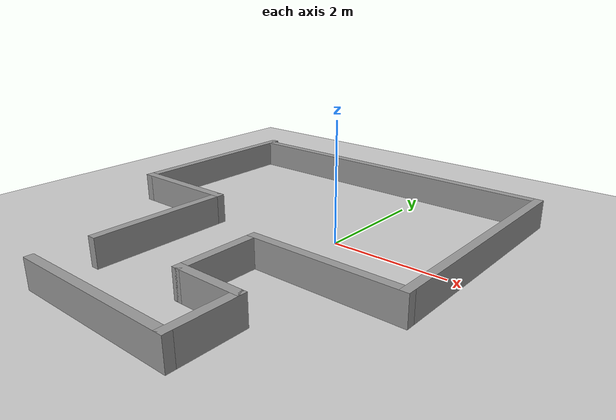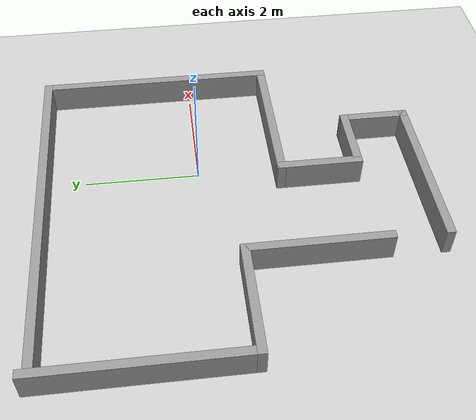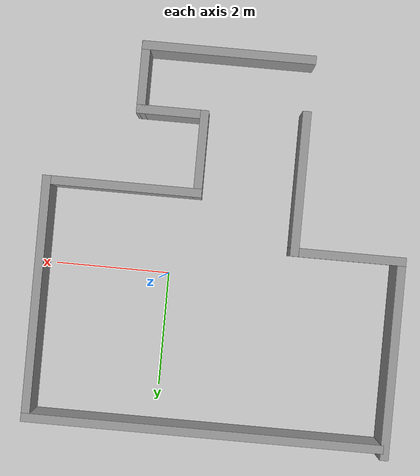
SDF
<sdf version="1.7">
 <world name="default">
  <light name="sun" type="directional">
   <pose>0 0 10 0 -0 0</pose>
   <diffuse>0.8 0.8 0.8 1</diffuse>
   <specular>0.2 0.2 0.2 1</specular>
   <attenuation>
    <range>1000</range>
    <constant>0.9</constant>
    <linear>0.01</linear>
    <quadratic>0.001</quadratic>
   </attenuation>
   <direction>-0.5 0.1 -0.9</direction>
   <spot><inner_angle>0</inner_angle><outer_angle>0</outer_angle><falloff>0</falloff></spot>
  </light>
  <model name="ground_plane">
   <static>1</static>
   <link name="link">
    <collision name="collision">
     <geometry><plane><normal>0 0 1</normal><size>100 100</size></plane></geometry>
     <surface>
      <contact><collide_bitmask>65535</collide_bitmask></contact>
      <friction><ode><mu>100</mu><mu2>50</mu2></ode></friction>
     </surface>
    </collision>
    <visual name="visual">
     <cast_shadows>0</cast_shadows>
     <geometry><plane><normal>0 0 1</normal><size>100 100</size></plane></geometry>
     <material>
      <script><uri>file://media/materials/scripts/gazebo.material</uri><name>Gazebo/Grey</name></script>
     </material>
    </visual>
   </link>
  </model>
  <gravity>0 0 -9.8</gravity>
  <magnetic_field>6e-06 2.3e-05 -4.2e-05</magnetic_field>
  <atmosphere type="adiabatic"/>
  <physics type="ode">
   <max_step_size>0.001</max_step_size>
   <real_time_factor>1</real_time_factor>
   <real_time_update_rate>1000</real_time_update_rate>
  </physics>
  <scene><ambient>0.4 0.4 0.4 1</ambient><background>0.7 0.7 0.7 1</background><shadows>1</shadows></scene>
  <spherical_coordinates>
   <surface_model>EARTH_WGS84</surface_model>
   <latitude_deg>0</latitude_deg>
   <longitude_deg>0</longitude_deg>
   <elevation>0</elevation>
   <heading_deg>0</heading_deg>
  </spherical_coordinates>
  <model name="closed_room">
   <pose>-0.898319 -0.544919 0 0 -0 0</pose>
   <link name="Wall_25">
    <collision name="Wall_25_Collision">
     <geometry><box><size>6.25 0.15 0.5</size></box></geometry>
     <pose>0 0 0.25 0 -0 0</pose>
     <surface><contact>0</contact></surface>
    </collision>
    <visual name="Wall_25_Visual">
     <pose>0 0 0.25 0 -0 0</pose>
     <geometry><box><size>6.25 0.15 0.5</size></box></geometry>
     <material>
      <script><uri>file://media/materials/scripts/gazebo.material</uri><name>Gazebo/Grey</name></script>
      <ambient>1 1 1 1</ambient>
     </material>
     <meta><layer>0</layer></meta>
    </visual>
    <pose>0.05006 3.22079 0 0 -0 0</pose>
   </link>
   <link name="Wall_26">
    <collision name="Wall_26_Collision">
     <geometry><box><size>4.25 0.15 0.5</size></box></geometry>
     <pose>0 0 0.25 0 -0 0</pose>
    </collision>
    <visual name="Wall_26_Visual">
     <pose>0 0 0.25 0 -0 0</pose>
     <geometry><box><size>4.25 0.15 0.5</size></box></geometry>
     <material>
      <script><uri>file://media/materials/scripts/gazebo.material</uri><name>Gazebo/Grey</name></script>
      <ambient>1 1 1 1</ambient>
     </material>
     <meta><layer>0</layer></meta>
    </visual>
    <pose>3.10006 1.17079 0 0 -0 -1.5708</pose>
   </link>
   <link name="Wall_27">
    <collision name="Wall_27_Collision">
     <geometry><box><size>2.75 0.15 0.5</size></box></geometry>
     <pose>0 0 0.25 0 -0 0</pose>
    </collision>
    <visual name="Wall_27_Visual">
     <pose>0 0 0.25 0 -0 0</pose>
     <geometry><box><size>2.75 0.15 0.5</size></box></geometry>
     <material>
      <script><uri>file://media/materials/scripts/gazebo.material</uri><name>Gazebo/Grey</name></script>
      <ambient>1 1 1 1</ambient>
     </material>
     <meta><layer>0</layer></meta>
    </visual>
    <pose>1.80006 -0.879214 0 0 -0 3.14159</pose>
   </link>
   <link name="Wall_28">
    <collision name="Wall_28_Collision">
     <geometry><box><size>1.5 0.15 0.5</size></box></geometry>
     <pose>0 0 0.25 0 -0 0</pose>
    </collision>
    <visual name="Wall_28_Visual">
     <pose>0 0 0.25 0 -0 0</pose>
     <geometry><box><size>1.5 0.15 0.5</size></box></geometry>
     <material>
      <script><uri>file://media/materials/scripts/gazebo.material</uri><name>Gazebo/Grey</name></script>
      <ambient>1 1 1 1</ambient>
     </material>
     <meta><layer>0</layer></meta>
    </visual>
    <pose>0.50006 -1.55421 0 0 -0 -1.5708</pose>
   </link>
   <link name="Wall_29">
    <collision name="Wall_29_Collision">
     <geometry><box><size>1.25 0.15 0.5</size></box></geometry>
     <pose>0 0 0.25 0 -0 0</pose>
    </collision>
    <visual name="Wall_29_Visual">
     <pose>0 0 0.25 0 -0 0</pose>
     <geometry><box><size>1.25 0.15 0.5</size></box></geometry>
     <material>
      <script><uri>file://media/materials/scripts/gazebo.material</uri><name>Gazebo/Grey</name></script>
      <ambient>1 1 1 1</ambient>
     </material>
     <meta><layer>0</layer></meta>
    </visual>
    <pose>1.05006 -2.22921 0 0 -0 0</pose>
   </link>
   <link name="Wall_30">
    <collision name="Wall_30_Collision">
     <geometry><box><size>1.25 0.15 0.5</size></box></geometry>
     <pose>0 0 0.25 0 -0 0</pose>
    </collision>
    <visual name="Wall_30_Visual">
     <pose>0 0 0.25 0 -0 0</pose>
     <geometry><box><size>1.25 0.15 0.5</size></box></geometry>
     <material>
      <script><uri>file://media/materials/scripts/gazebo.material</uri><name>Gazebo/Grey</name></script>
      <ambient>1 1 1 1</ambient>
     </material>
     <meta><layer>0</layer></meta>
    </visual>
    <pose>1.60006 -2.77921 0 0 -0 -1.5708</pose>
   </link>
   <link name="Wall_31">
    <collision name="Wall_31_Collision">
     <geometry><box><size>3 0.15 0.5</size></box></geometry>
     <pose>0 0 0.25 0 -0 0</pose>
    </collision>
    <visual name="Wall_31_Visual">
     <pose>0 0 0.25 0 -0 0</pose>
     <geometry><box><size>3 0.15 0.5</size></box></geometry>
     <material>
      <script><uri>file://media/materials/scripts/gazebo.material</uri><name>Gazebo/Grey</name></script>
      <ambient>1 1 1 1</ambient>
     </material>
     <meta><layer>0</layer></meta>
    </visual>
    <pose>0.17506 -3.32921 0 0 -0 3.14159</pose>
   </link>
   <link name="Wall_33">
    <collision name="Wall_33_Collision">
     <geometry><box><size>2.5 0.15 0.5</size></box></geometry>
     <pose>0 0 0.25 0 -0 0</pose>
    </collision>
    <visual name="Wall_33_Visual">
     <pose>0 0 0.25 0 -0 0</pose>
     <geometry><box><size>2.5 0.15 0.5</size></box></geometry>
     <material>
      <script><uri>file://media/materials/scripts/gazebo.material</uri><name>Gazebo/Grey</name></script>
      <ambient>1 1 1 1</ambient>
     </material>
     <meta><layer>0</layer></meta>
    </visual>
    <pose>-1.25006 -1.19579 0 0 -0 1.5708</pose>
   </link>
   <link name="Wall_34">
    <collision name="Wall_34_Collision">
     <geometry><box><size>2 0.15 0.5</size></box></geometry>
     <pose>0 0 0.25 0 -0 0</pose>
    </collision>
    <visual name="Wall_34_Visual">
     <pose>0 0 0.25 0 -0 0</pose>
     <geometry><box><size>2 0.15 0.5</size></box></geometry>
     <material>
      <script><uri>file://media/materials/scripts/gazebo.material</uri><name>Gazebo/Grey</name></script>
      <ambient>1 1 1 1</ambient>
     </material>
     <meta><layer>0</layer></meta>
    </visual>
    <pose>-2.17506 -0.020787 0 0 -0 3.14159</pose>
   </link>
   <link name="Wall_35">
    <collision name="Wall_35_Collision">
     <geometry><box><size>3.5 0.15 0.5</size></box></geometry>
     <pose>0 0 0.25 0 -0 0</pose>
    </collision>
    <visual name="Wall_35_Visual">
     <pose>0 0 0.25 0 -0 0</pose>
     <geometry><box><size>3.5 0.15 0.5</size></box></geometry>
     <material>
      <script><uri>file://media/materials/scripts/gazebo.material</uri><name>Gazebo/Grey</name></script>
      <ambient>1 1 1 1</ambient>
     </material>
     <meta><layer>0</layer></meta>
    </visual>
    <pose>-3.10006 1.65421 0 0 -0 1.5708</pose>
   </link>
   <static>1</static>
  </model>
 </world>
</sdf>
